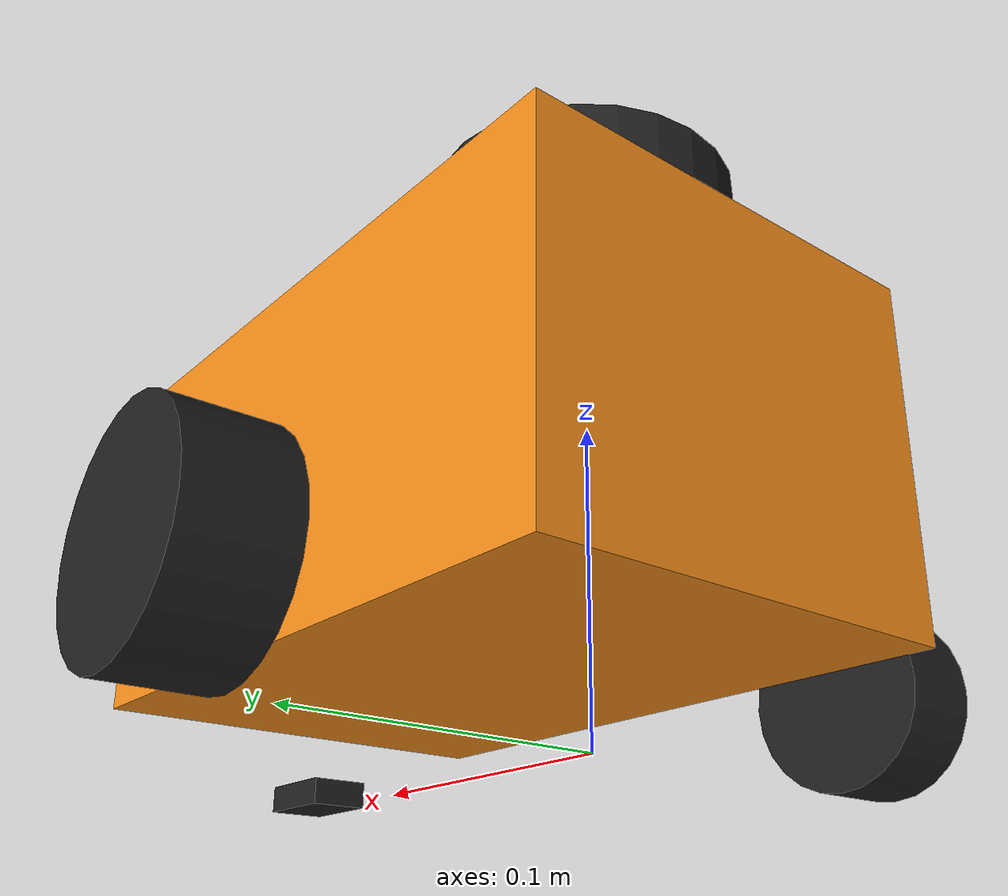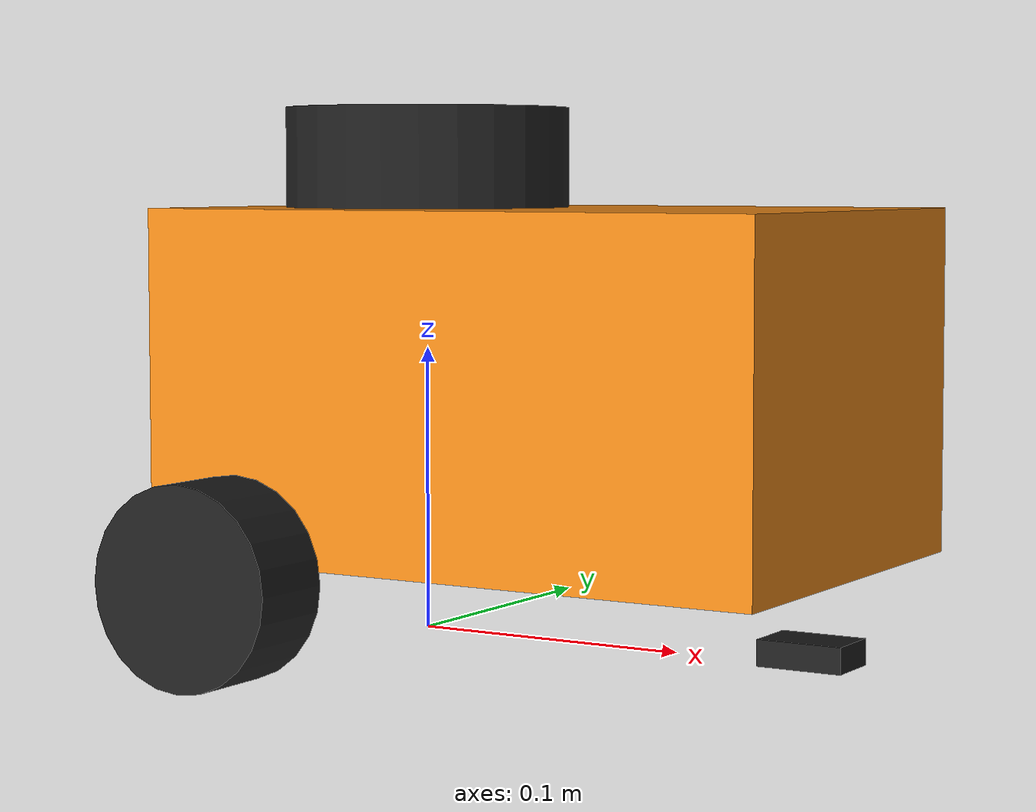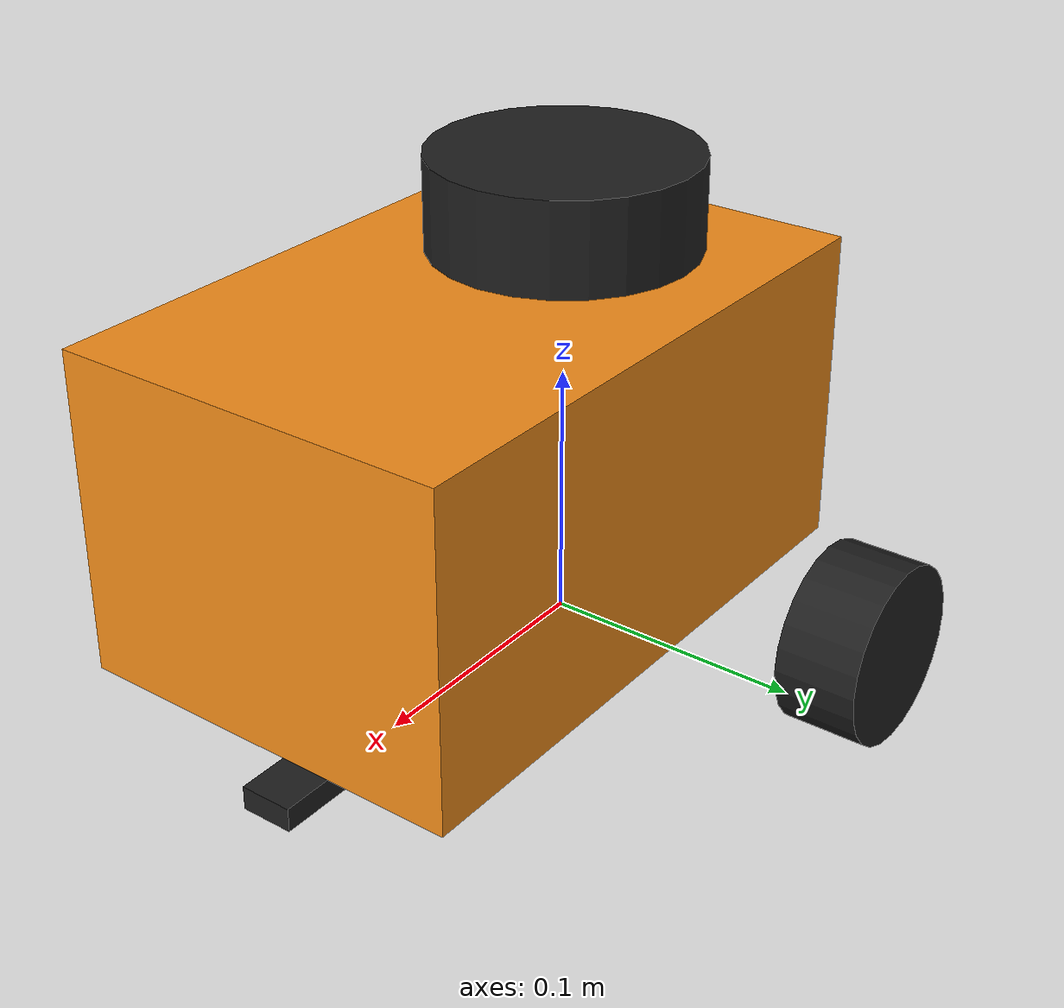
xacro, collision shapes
<?xml version="1.0" ?>
<robot name="autonomous_robot" xmlns:xacro="http://ros.org/wiki/xacro">
  <xacro:include filename="$(find robot_gazebo)/robot_description/urdf/common_properties.xacro"/>
  <xacro:include filename="$(find robot_gazebo)/robot_description/urdf/robot.gazebo.xacro"/>
  <link name="base_footprint"/>

  <joint name="base_joint" type="fixed">
    <parent link="base_footprint"/>
    <child link="base_link"/>
    <origin xyz="0.0 0.0 0.010" rpy="0 0 0"/>
  </joint>

  <link name="base_link">
    <visual>
      <origin xyz="-0.055 0.165 -0.07" rpy="1.57 0  0"/>
      <geometry>
        <mesh filename="package://robot_gazebo/robot_description/meshes/robot.stl" scale="0.001 0.001 0.001"/>
      </geometry>
      <material name="orange"/>
    </visual>

    <collision>
      <origin xyz="0.05 0 0.080" rpy="0 0 0"/>
      <geometry>
        <box size="0.23 0.15 0.12"/>
      </geometry>
    </collision>

    <inertial>
      <origin xyz="0.025 0 0" rpy="0 0 0"/>
      <mass value="1"/>
      <inertia ixx="2.2124416e-03" ixy="-1.2294101e-05" ixz="3.4938785e-05"
               iyy="2.1193702e-03" iyz="-5.0120904e-06"
               izz="2.0064271e-03" />
    </inertial>
  </link>

  <joint name="wheel_left_joint" type="continuous">
    <parent link="base_link"/>
    <child link="wheel_left_link"/>
    <origin xyz="0.0 0.1275 0.023" rpy="-1.57 0 0"/>
    <axis xyz="0 0 1"/>
  </joint>

  <link name="wheel_left_link">
    <collision>
      <origin xyz="0 0 0" rpy="0 0 0"/>
      <geometry>
        <cylinder length="0.03" radius="0.033"/>
      </geometry>
    </collision>

    <inertial>
      <origin xyz="0 0 0" />
      <mass value="2.8498940e-02" />
      <inertia ixx="1.1175580e-05" ixy="-4.2369783e-11" ixz="-5.9381719e-09"
               iyy="1.1192413e-05" iyz="-1.4400107e-11"
               izz="2.0712558e-05" />
      </inertial>
  </link>

  <joint name="wheel_right_joint" type="continuous">
    <parent link="base_link"/>
    <child link="wheel_right_link"/>
    <origin xyz="0.0 -0.1275 0.023" rpy="-1.57 0 0"/>
    <axis xyz="0 0 1"/>
  </joint>

  <link name="wheel_right_link">
    <collision>
      <origin xyz="0 0 0" rpy="0 0 0"/>
      <geometry>
        <cylinder length="0.03" radius="0.033"/>
      </geometry>
    </collision>

    <inertial>
      <origin xyz="0 0 0" />
      <mass value="2.8498940e-02" />
      <inertia ixx="1.1175580e-05" ixy="-4.2369783e-11" ixz="-5.9381719e-09"
               iyy="1.1192413e-05" iyz="-1.4400107e-11"
               izz="2.0712558e-05" />
      </inertial>
  </link>

  <joint name="caster_back_joint" type="fixed">
    <parent link="base_link"/>
    <child link="caster_link"/>
    <origin xyz="0.15 0 -0.004" rpy="-1.57 0 0"/>
  </joint>

  <link name="caster_link">
    <collision>
      <origin xyz="0 0.001 0" rpy="0 0 0"/>
      <geometry>
        <box size="0.030 0.009 0.020"/>
      </geometry>
    </collision>

    <inertial>
      <origin xyz="0 0 0" />
      <mass value="0.005" />
      <inertia ixx="0.001" ixy="0.0" ixz="0.0"
               iyy="0.001" iyz="0.0"
               izz="0.001" />
    </inertial>
  </link>

  <joint name="scan_joint" type="fixed">
    <parent link="base_link"/>
    <child link="base_scan"/>
    <origin xyz="0 0 0.15" rpy="0 0 0"/>
  </joint>

  <link name="base_scan">
    <collision>
      <origin xyz="0.0 0 -0.0" rpy="0 0 0"/>
      <geometry>
        <cylinder length="0.05" radius="0.05"/>
      </geometry>
    </collision>
  </link>
</robot>
